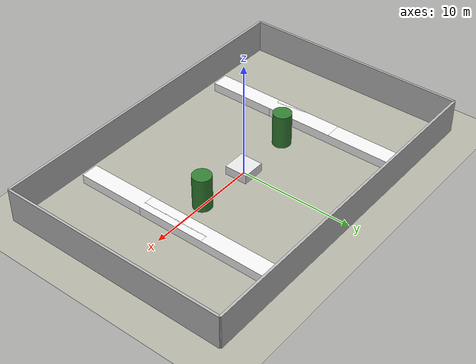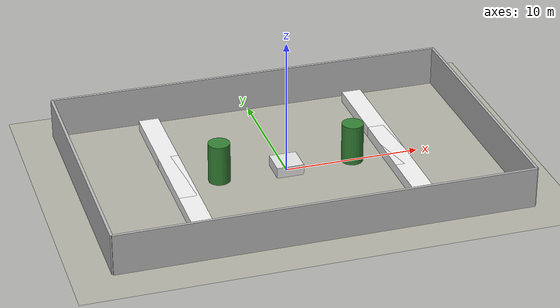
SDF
<?xml version="1.0" ?>
<sdf version="1.9">
  <world name="grand_restaurant">
    <physics name="1ms" type="ignored">
      <max_step_size>0.001</max_step_size>
      <real_time_factor>1.0</real_time_factor>
    </physics>
    <plugin filename="gz-sim-physics-system" name="gz::sim::systems::Physics"/>
    <plugin filename="gz-sim-scene-broadcaster-system" name="gz::sim::systems::SceneBroadcaster"/>
    <plugin filename="gz-sim-user-commands-system" name="gz::sim::systems::UserCommands"/>
    <plugin filename="gz-sim-sensors-system" name="gz::sim::systems::Sensors"/>

    <light type="directional" name="sun">
      <cast_shadows>true</cast_shadows>
      <pose>0 0 15 0 0 0</pose>
      <diffuse>1.0 0.95 0.8 1</diffuse>
      <specular>0.2 0.2 0.2 1</specular>
      <direction>-0.2 0.2 -1.0</direction>
    </light>

    <model name="ground_plane">
      <static>true</static>
      <link name="link">
        <collision name="collision"><geometry><plane><normal>0 0 1</normal><size>30 20</size></plane></geometry></collision>
        <visual name="visual">
          <geometry><plane><normal>0 0 1</normal><size>30 20</size></plane></geometry>
          <material><ambient>0.7 0.7 0.65 1</ambient><diffuse>0.7 0.7 0.65 1</diffuse></material>
        </visual>
      </link>
    </model>

    <model name="walls">
      <static>true</static>
      <link name="north"><pose>0 10 1.5 0 0 0</pose><collision name="c"><geometry><box><size>30 0.2 3</size></box></geometry></collision><visual name="v"><geometry><box><size>30 0.2 3</size></box></geometry></visual></link>
      <link name="south"><pose>0 -10 1.5 0 0 0</pose><collision name="c"><geometry><box><size>30 0.2 3</size></box></geometry></collision><visual name="v"><geometry><box><size>30 0.2 3</size></box></geometry></visual></link>
      <link name="east"><pose>15 0 1.5 0 0 1.5708</pose><collision name="c"><geometry><box><size>20 0.2 3</size></box></geometry></collision><visual name="v"><geometry><box><size>20 0.2 3</size></box></geometry></visual></link>
      <link name="west"><pose>-15 0 1.5 0 0 1.5708</pose><collision name="c"><geometry><box><size>20 0.2 3</size></box></geometry></collision><visual name="v"><geometry><box><size>20 0.2 3</size></box></geometry></visual></link>
    </model>

    <model name="left_long_tables">
      <static>true</static>
      <pose>-8 3 0.4 0 0 1.5708</pose>
      <link name="link">
        <collision name="c"><geometry><box><size>12 1.5 0.8</size></box></geometry></collision>
        <visual name="v">
          <geometry><box><size>12 1.5 0.8</size></box></geometry>
          <material><ambient>0.95 0.95 0.95 1</ambient></material> </visual>
      </link>
    </model>

    <model name="left_long_tables_2">
      <static>true</static>
      <pose>8 3 0.4 0 0 1.5708</pose>
      <link name="link">
        <collision name="c"><geometry><box><size>12 1.5 0.8</size></box></geometry></collision>
        <visual name="v"><geometry><box><size>12 1.5 0.8</size></box></geometry><material><ambient>0.95 0.95 0.95 1</ambient></material></visual>
      </link>
    </model>

    <model name="right_long_tables">
      <static>true</static>
      <pose>-8 -3 0.4 0 0 1.5708</pose>
      <link name="link">
        <collision name="c"><geometry><box><size>12 1.5 0.8</size></box></geometry></collision>
        <visual name="v"><geometry><box><size>12 1.5 0.8</size></box></geometry><material><ambient>0.95 0.95 0.95 1</ambient></material></visual>
      </link>
    </model>

    <model name="right_long_tables_2">
      <static>true</static>
      <pose>8 -3 0.4 0 0 1.5708</pose>
      <link name="link">
        <collision name="c"><geometry><box><size>12 1.5 0.8</size></box></geometry></collision>
        <visual name="v"><geometry><box><size>12 1.5 0.8</size></box></geometry><material><ambient>0.95 0.95 0.95 1</ambient></material></visual>
      </link>
    </model>

    <model name="center_trees_pillars">
      <static>true</static>
      <link name="pillar_1">
        <pose>-5 0 1.5 0 0 0</pose>
        <collision name="c"><geometry><cylinder><radius>0.8</radius><length>3</length></cylinder></geometry></collision>
        <visual name="v"><geometry><cylinder><radius>0.8</radius><length>3</length></cylinder></geometry><material><ambient>0.2 0.5 0.2 1</ambient></material></visual>
      </link>
      <link name="pillar_2">
        <pose>5 0 1.5 0 0 0</pose>
        <collision name="c"><geometry><cylinder><radius>0.8</radius><length>3</length></cylinder></geometry></collision>
        <visual name="v"><geometry><cylinder><radius>0.8</radius><length>3</length></cylinder></geometry><material><ambient>0.2 0.5 0.2 1</ambient></material></visual>
      </link>
      <link name="center_table_1">
        <pose>0 0 0.4 0 0 0</pose>
        <collision name="c"><geometry><box><size>2 2 0.8</size></box></geometry></collision>
        <visual name="v"><geometry><box><size>2 2 0.8</size></box></geometry><material><ambient>0.9 0.9 0.9 1</ambient></material></visual>
      </link>
    </model>

  </world>
</sdf>
